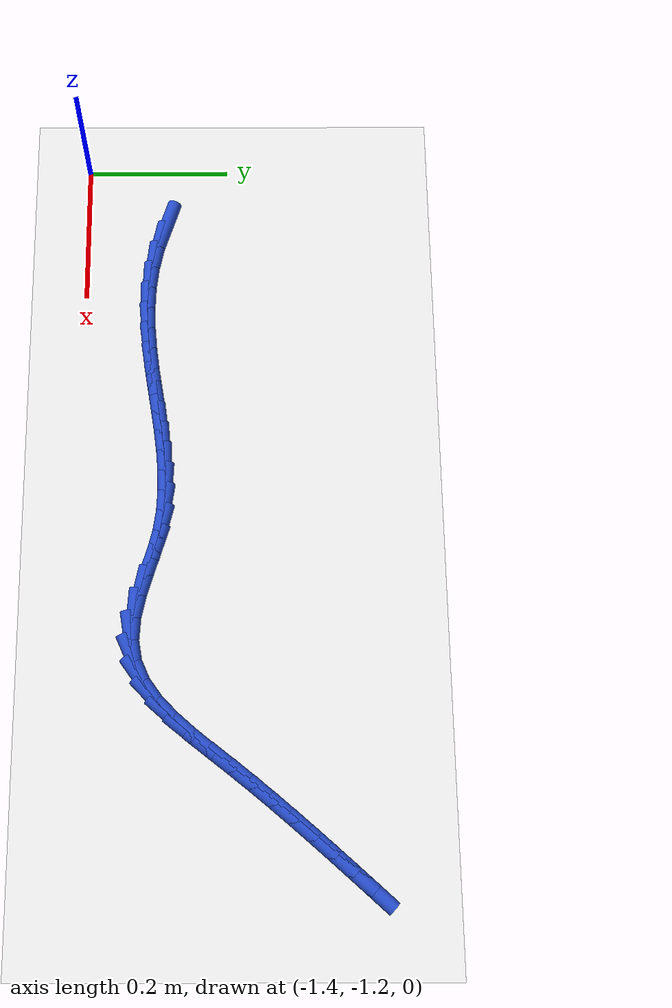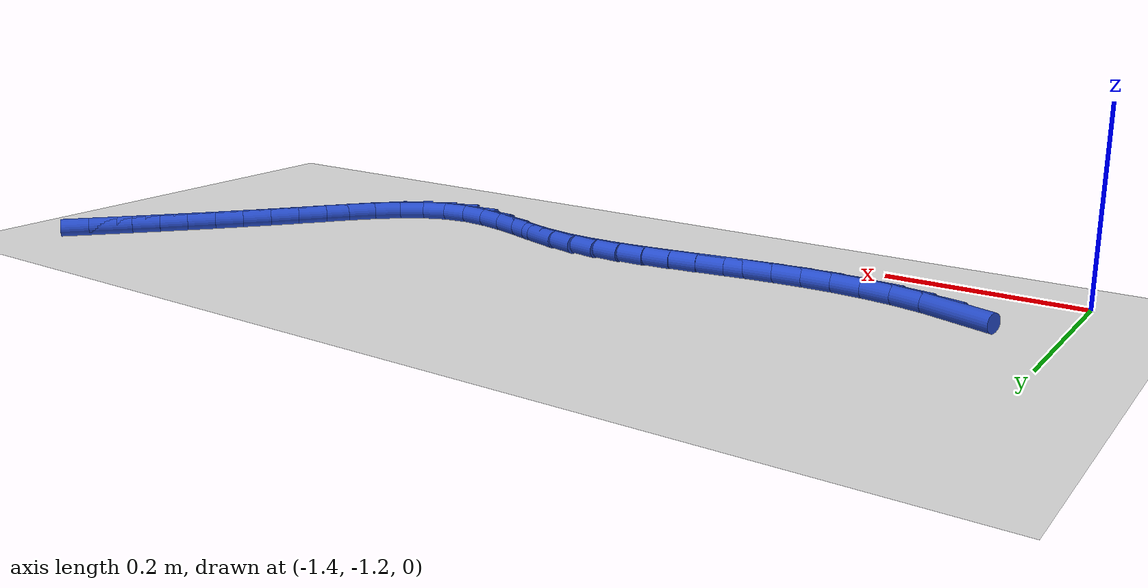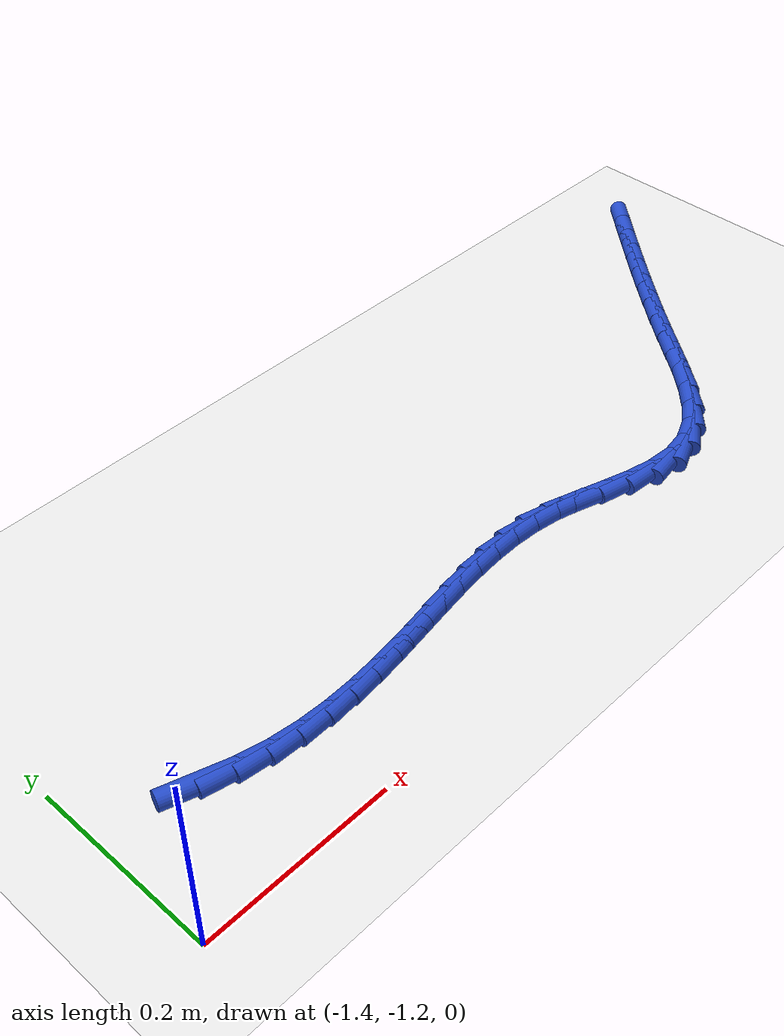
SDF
<sdf version="1.6">
 <world name="default">
  <model name="ground_plane">
   <static>1</static>
   <link name="link">
    <collision name="collision">
     <geometry><plane><normal>0 0 1</normal><size>100 100</size></plane></geometry>
     <surface><friction><ode><mu>100</mu><mu2>50</mu2></ode></friction></surface>
    </collision>
    <visual name="visual">
     <cast_shadows>0</cast_shadows>
     <geometry><plane><normal>0 0 1</normal><size>100 100</size></plane></geometry>
     <material>
      <script><uri>file://media/materials/scripts/gazebo.material</uri><name>Gazebo/WhiteGlow</name></script>
     </material>
    </visual>
   </link>
  </model>
  <model name="line">
   <link name="link_215">
    <pose>-1.3069381416918597 -1.0879665378710797 0.01 0 1.57 -0.3223513973124456</pose>
    <collision name="collision">
     <geometry><cylinder><radius>0.01</radius><length>0.08</length></cylinder></geometry>
    </collision>
    <visual name="visual">
     <material>
      <script><name>Gazebo/Blue</name><uri>file://media/materials/scripts/gazebo.material</uri></script>
     </material>
     <geometry><cylinder><radius>0.01</radius><length>0.08</length></cylinder></geometry>
    </visual>
   </link>
   <link name="link_216">
    <pose>-1.2741670813501549 -1.098912107102975 0.01 0 1.57 -0.22048272928162013</pose>
    <collision name="collision">
     <geometry><cylinder><radius>0.01</radius><length>0.08</length></cylinder></geometry>
    </collision>
    <visual name="visual">
     <material>
      <script><name>Gazebo/Blue</name><uri>file://media/materials/scripts/gazebo.material</uri></script>
     </material>
     <geometry><cylinder><radius>0.01</radius><length>0.08</length></cylinder></geometry>
    </visual>
   </link>
   <link name="link_217">
    <pose>-1.241827384131492 -1.1061602852309242 0.01 0 1.57 -0.12613227870529534</pose>
    <collision name="collision">
     <geometry><cylinder><radius>0.01</radius><length>0.08</length></cylinder></geometry>
    </collision>
    <visual name="visual">
     <material>
      <script><name>Gazebo/Blue</name><uri>file://media/materials/scripts/gazebo.material</uri></script>
     </material>
     <geometry><cylinder><radius>0.01</radius><length>0.08</length></cylinder></geometry>
    </visual>
   </link>
   <link name="link_218">
    <pose>-1.209896580229742 -1.1102092854192736 0.01 0 1.57 -0.04270858013161919</pose>
    <collision name="collision">
     <geometry><cylinder><radius>0.01</radius><length>0.08</length></cylinder></geometry>
    </collision>
    <visual name="visual">
     <material>
      <script><name>Gazebo/Blue</name><uri>file://media/materials/scripts/gazebo.material</uri></script>
     </material>
     <geometry><cylinder><radius>0.01</radius><length>0.08</length></cylinder></geometry>
    </visual>
   </link>
   <link name="link_219">
    <pose>-1.1783521998387714 -1.1115573208323712 0.01 0 1.57 0.027405083988351304</pose>
    <collision name="collision">
     <geometry><cylinder><radius>0.01</radius><length>0.08</length></cylinder></geometry>
    </collision>
    <visual name="visual">
     <material>
      <script><name>Gazebo/Blue</name><uri>file://media/materials/scripts/gazebo.material</uri></script>
     </material>
     <geometry><cylinder><radius>0.01</radius><length>0.08</length></cylinder></geometry>
    </visual>
   </link>
   <link name="link_220">
    <pose>-1.1471717731524511 -1.1107026046345654 0.01 0 1.57 0.08279802756167352</pose>
    <collision name="collision">
     <geometry><cylinder><radius>0.01</radius><length>0.08</length></cylinder></geometry>
    </collision>
    <visual name="visual">
     <material>
      <script><name>Gazebo/Blue</name><uri>file://media/materials/scripts/gazebo.material</uri></script>
     </material>
     <geometry><cylinder><radius>0.01</radius><length>0.08</length></cylinder></geometry>
    </visual>
   </link>
   <link name="link_221">
    <pose>-1.1163328303646485 -1.1081433499902036 0.01 0 1.57 0.12276060538566147</pose>
    <collision name="collision">
     <geometry><cylinder><radius>0.01</radius><length>0.08</length></cylinder></geometry>
    </collision>
    <visual name="visual">
     <material>
      <script><name>Gazebo/Blue</name><uri>file://media/materials/scripts/gazebo.material</uri></script>
     </material>
     <geometry><cylinder><radius>0.01</radius><length>0.08</length></cylinder></geometry>
    </visual>
   </link>
   <link name="link_222">
    <pose>-1.0858129016692322 -1.1043777700636326 0.01 0 1.57 0.1469538210554812</pose>
    <collision name="collision">
     <geometry><cylinder><radius>0.01</radius><length>0.08</length></cylinder></geometry>
    </collision>
    <visual name="visual">
     <material>
      <script><name>Gazebo/Blue</name><uri>file://media/materials/scripts/gazebo.material</uri></script>
     </material>
     <geometry><cylinder><radius>0.01</radius><length>0.08</length></cylinder></geometry>
    </visual>
   </link>
   <link name="link_223">
    <pose>-1.0555895172600713 -1.0999040780192009 0.01 0 1.57 0.1551274842624307</pose>
    <collision name="collision">
     <geometry><cylinder><radius>0.01</radius><length>0.08</length></cylinder></geometry>
    </collision>
    <visual name="visual">
     <material>
      <script><name>Gazebo/Blue</name><uri>file://media/materials/scripts/gazebo.material</uri></script>
     </material>
     <geometry><cylinder><radius>0.01</radius><length>0.08</length></cylinder></geometry>
    </visual>
   </link>
   <link name="link_224">
    <pose>-1.0256402073310347 -1.095220487021256 0.01 0 1.57 0.14693392653594667</pose>
    <collision name="collision">
     <geometry><cylinder><radius>0.01</radius><length>0.08</length></cylinder></geometry>
    </collision>
    <visual name="visual">
     <material>
      <script><name>Gazebo/Blue</name><uri>file://media/materials/scripts/gazebo.material</uri></script>
     </material>
     <geometry><cylinder><radius>0.01</radius><length>0.08</length></cylinder></geometry>
    </visual>
   </link>
   <link name="link_225">
    <pose>-0.9959425020759908 -1.0908252102341458 0.01 0 1.57 0.12185424018210064</pose>
    <collision name="collision">
     <geometry><cylinder><radius>0.01</radius><length>0.08</length></cylinder></geometry>
    </collision>
    <visual name="visual">
     <material>
      <script><name>Gazebo/Blue</name><uri>file://media/materials/scripts/gazebo.material</uri></script>
     </material>
     <geometry><cylinder><radius>0.01</radius><length>0.08</length></cylinder></geometry>
    </visual>
   </link>
   <link name="link_226">
    <pose>-0.966473931688808 -1.0872164608222175 0.01 0 1.57 0.07925461041127242</pose>
    <collision name="collision">
     <geometry><cylinder><radius>0.01</radius><length>0.08</length></cylinder></geometry>
    </collision>
    <visual name="visual">
     <material>
      <script><name>Gazebo/Blue</name><uri>file://media/materials/scripts/gazebo.material</uri></script>
     </material>
     <geometry><cylinder><radius>0.01</radius><length>0.08</length></cylinder></geometry>
    </visual>
   </link>
   <link name="link_227">
    <pose>-0.9372120263633563 -1.0848924519498189 0.01 0 1.57 0.018605066812365154</pose>
    <collision name="collision">
     <geometry><cylinder><radius>0.01</radius><length>0.08</length></cylinder></geometry>
    </collision>
    <visual name="visual">
     <material>
      <script><name>Gazebo/Blue</name><uri>file://media/materials/scripts/gazebo.material</uri></script>
     </material>
     <geometry><cylinder><radius>0.01</radius><length>0.08</length></cylinder></geometry>
    </visual>
   </link>
   <link name="link_228">
    <pose>-0.9081343162935036 -1.0843513967812977 0.01 0 1.57 -0.06010570691124996</pose>
    <collision name="collision">
     <geometry><cylinder><radius>0.01</radius><length>0.08</length></cylinder></geometry>
    </collision>
    <visual name="visual">
     <material>
      <script><name>Gazebo/Blue</name><uri>file://media/materials/scripts/gazebo.material</uri></script>
     </material>
     <geometry><cylinder><radius>0.01</radius><length>0.08</length></cylinder></geometry>
    </visual>
   </link>
   <link name="link_229">
    <pose>-0.879218331673119 -1.0860915084810019 0.01 0 1.57 -0.15578119071336138</pose>
    <collision name="collision">
     <geometry><cylinder><radius>0.01</radius><length>0.08</length></cylinder></geometry>
    </collision>
    <visual name="visual">
     <material>
      <script><name>Gazebo/Blue</name><uri>file://media/materials/scripts/gazebo.material</uri></script>
     </material>
     <geometry><cylinder><radius>0.01</radius><length>0.08</length></cylinder></geometry>
    </visual>
   </link>
   <link name="link_230">
    <pose>-0.8504416026960707 -1.0906110002132783 0.01 0 1.57 -0.2584110733649718</pose>
    <collision name="collision">
     <geometry><cylinder><radius>0.01</radius><length>0.08</length></cylinder></geometry>
    </collision>
    <visual name="visual">
     <material>
      <script><name>Gazebo/Blue</name><uri>file://media/materials/scripts/gazebo.material</uri></script>
     </material>
     <geometry><cylinder><radius>0.01</radius><length>0.08</length></cylinder></geometry>
    </visual>
   </link>
   <link name="link_231">
    <pose>-0.8217415241635985 -1.0981970304625042 0.01 0 1.57 -0.31252661158570744</pose>
    <collision name="collision">
     <geometry><cylinder><radius>0.01</radius><length>0.08</length></cylinder></geometry>
    </collision>
    <visual name="visual">
     <material>
      <script><name>Gazebo/Blue</name><uri>file://media/materials/scripts/gazebo.material</uri></script>
     </material>
     <geometry><cylinder><radius>0.01</radius><length>0.08</length></cylinder></geometry>
    </visual>
   </link>
   <link name="link_232">
    <pose>-0.7927561508190578 -1.1075626577484117 0.01 0 1.57 -0.2981246274314678</pose>
    <collision name="collision">
     <geometry><cylinder><radius>0.01</radius><length>0.08</length></cylinder></geometry>
    </collision>
    <visual name="visual">
     <material>
      <script><name>Gazebo/Blue</name><uri>file://media/materials/scripts/gazebo.material</uri></script>
     </material>
     <geometry><cylinder><radius>0.01</radius><length>0.08</length></cylinder></geometry>
    </visual>
   </link>
   <link name="link_233">
    <pose>-0.7629883027337316 -1.116709799910015 0.01 0 1.57 -0.22016495395872732</pose>
    <collision name="collision">
     <geometry><cylinder><radius>0.01</radius><length>0.08</length></cylinder></geometry>
    </collision>
    <visual name="visual">
     <material>
      <script><name>Gazebo/Blue</name><uri>file://media/materials/scripts/gazebo.material</uri></script>
     </material>
     <geometry><cylinder><radius>0.01</radius><length>0.08</length></cylinder></geometry>
    </visual>
   </link>
   <link name="link_234">
    <pose>-0.7322833748381457 -1.1235813364929994 0.01 0 1.57 -0.07584265626993453</pose>
    <collision name="collision">
     <geometry><cylinder><radius>0.01</radius><length>0.08</length></cylinder></geometry>
    </collision>
    <visual name="visual">
     <material>
      <script><name>Gazebo/Blue</name><uri>file://media/materials/scripts/gazebo.material</uri></script>
     </material>
     <geometry><cylinder><radius>0.01</radius><length>0.08</length></cylinder></geometry>
    </visual>
   </link>
   <link name="link_235">
    <pose>-0.7019146404993782 -1.1258890083300832 0.01 0 1.57 0.15594782706257898</pose>
    <collision name="collision">
     <geometry><cylinder><radius>0.01</radius><length>0.08</length></cylinder></geometry>
    </collision>
    <visual name="visual">
     <material>
      <script><name>Gazebo/Blue</name><uri>file://media/materials/scripts/gazebo.material</uri></script>
     </material>
     <geometry><cylinder><radius>0.01</radius><length>0.08</length></cylinder></geometry>
    </visual>
   </link>
   <link name="link_236">
    <pose>-0.6734533158138316 -1.1214141922074334 0.01 0 1.57 0.4149894700828293</pose>
    <collision name="collision">
     <geometry><cylinder><radius>0.01</radius><length>0.08</length></cylinder></geometry>
    </collision>
    <visual name="visual">
     <material>
      <script><name>Gazebo/Blue</name><uri>file://media/materials/scripts/gazebo.material</uri></script>
     </material>
     <geometry><cylinder><radius>0.01</radius><length>0.08</length></cylinder></geometry>
    </visual>
   </link>
   <link name="link_237">
    <pose>-0.6473535182493972 -1.1099152439232138 0.01 0 1.57 0.6194556767825515</pose>
    <collision name="collision">
     <geometry><cylinder><radius>0.01</radius><length>0.08</length></cylinder></geometry>
    </collision>
    <visual name="visual">
     <material>
      <script><name>Gazebo/Blue</name><uri>file://media/materials/scripts/gazebo.material</uri></script>
     </material>
     <geometry><cylinder><radius>0.01</radius><length>0.08</length></cylinder></geometry>
    </visual>
   </link>
   <link name="link_238">
    <pose>-0.6231989538231241 -1.0926909240428457 0.01 0 1.57 0.7619403407685577</pose>
    <collision name="collision">
     <geometry><cylinder><radius>0.01</radius><length>0.08</length></cylinder></geometry>
    </collision>
    <visual name="visual">
     <material>
      <script><name>Gazebo/Blue</name><uri>file://media/materials/scripts/gazebo.material</uri></script>
     </material>
     <geometry><cylinder><radius>0.01</radius><length>0.08</length></cylinder></geometry>
    </visual>
   </link>
   <link name="link_239">
    <pose>-0.6005503255666471 -1.0710807025093185 0.01 0 1.57 0.8517959708458265</pose>
    <collision name="collision">
     <geometry><cylinder><radius>0.01</radius><length>0.08</length></cylinder></geometry>
    </collision>
    <visual name="visual">
     <material>
      <script><name>Gazebo/Blue</name><uri>file://media/materials/scripts/gazebo.material</uri></script>
     </material>
     <geometry><cylinder><radius>0.01</radius><length>0.08</length></cylinder></geometry>
    </visual>
   </link>
   <link name="link_240">
    <pose>-0.578968336511602 -1.0464240492656218 0.01 0 1.57 0.8992145118736548</pose>
    <collision name="collision">
     <geometry><cylinder><radius>0.01</radius><length>0.08</length></cylinder></geometry>
    </collision>
    <visual name="visual">
     <material>
      <script><name>Gazebo/Blue</name><uri>file://media/materials/scripts/gazebo.material</uri></script>
     </material>
     <geometry><cylinder><radius>0.01</radius><length>0.08</length></cylinder></geometry>
    </visual>
   </link>
   <link name="link_241">
    <pose>-0.558013689689624 -1.020060434254745 0.01 0 1.57 0.9103775781241387</pose>
    <collision name="collision">
     <geometry><cylinder><radius>0.01</radius><length>0.08</length></cylinder></geometry>
    </collision>
    <visual name="visual">
     <material>
      <script><name>Gazebo/Blue</name><uri>file://media/materials/scripts/gazebo.material</uri></script>
     </material>
     <geometry><cylinder><radius>0.01</radius><length>0.08</length></cylinder></geometry>
    </visual>
   </link>
   <link name="link_242">
    <pose>-0.5372478600524218 -0.9933270815988063 0.01 0 1.57 0.8975116617635371</pose>
    <collision name="collision">
     <geometry><cylinder><radius>0.01</radius><length>0.08</length></cylinder></geometry>
    </collision>
    <visual name="visual">
     <material>
      <script><name>Gazebo/Blue</name><uri>file://media/materials/scripts/gazebo.material</uri></script>
     </material>
     <geometry><cylinder><radius>0.01</radius><length>0.08</length></cylinder></geometry>
    </visual>
   </link>
   <link name="link_243">
    <pose>-0.5163721505399365 -0.9671544004851899 0.01 0 1.57 0.8833655853538642</pose>
    <collision name="collision">
     <geometry><cylinder><radius>0.01</radius><length>0.08</length></cylinder></geometry>
    </collision>
    <visual name="visual">
     <material>
      <script><name>Gazebo/Blue</name><uri>file://media/materials/scripts/gazebo.material</uri></script>
     </material>
     <geometry><cylinder><radius>0.01</radius><length>0.08</length></cylinder></geometry>
    </visual>
   </link>
   <link name="link_244">
    <pose>-0.4953888815365821 -0.9415970212706298 0.01 0 1.57 0.8710013312805046</pose>
    <collision name="collision">
     <geometry><cylinder><radius>0.01</radius><length>0.08</length></cylinder></geometry>
    </collision>
    <visual name="visual">
     <material>
      <script><name>Gazebo/Blue</name><uri>file://media/materials/scripts/gazebo.material</uri></script>
     </material>
     <geometry><cylinder><radius>0.01</radius><length>0.08</length></cylinder></geometry>
    </visual>
   </link>
   <link name="link_245">
    <pose>-0.47433945726185534 -0.9165958639737484 0.01 0 1.57 0.8605083792738067</pose>
    <collision name="collision">
     <geometry><cylinder><radius>0.01</radius><length>0.08</length></cylinder></geometry>
    </collision>
    <visual name="visual">
     <material>
      <script><name>Gazebo/Blue</name><uri>file://media/materials/scripts/gazebo.material</uri></script>
     </material>
     <geometry><cylinder><radius>0.01</radius><length>0.08</length></cylinder></geometry>
    </visual>
   </link>
   <link name="link_246">
    <pose>-0.45326528193525445 -0.892091848613169 0.01 0 1.57 0.8519707297458977</pose>
    <collision name="collision">
     <geometry><cylinder><radius>0.01</radius><length>0.08</length></cylinder></geometry>
    </collision>
    <visual name="visual">
     <material>
      <script><name>Gazebo/Blue</name><uri>file://media/materials/scripts/gazebo.material</uri></script>
     </material>
     <geometry><cylinder><radius>0.01</radius><length>0.08</length></cylinder></geometry>
    </visual>
   </link>
   <link name="link_247">
    <pose>-0.4322077597762767 -0.868025895207515 0.01 0 1.57 0.8454672508263815</pose>
    <collision name="collision">
     <geometry><cylinder><radius>0.01</radius><length>0.08</length></cylinder></geometry>
    </collision>
    <visual name="visual">
     <material>
      <script><name>Gazebo/Blue</name><uri>file://media/materials/scripts/gazebo.material</uri></script>
     </material>
     <geometry><cylinder><radius>0.01</radius><length>0.08</length></cylinder></geometry>
    </visual>
   </link>
   <link name="link_248">
    <pose>-0.41120829500441963 -0.8443389237754092 0.01 0 1.57 0.8410719780770941</pose>
    <collision name="collision">
     <geometry><cylinder><radius>0.01</radius><length>0.08</length></cylinder></geometry>
    </collision>
    <visual name="visual">
     <material>
      <script><name>Gazebo/Blue</name><uri>file://media/materials/scripts/gazebo.material</uri></script>
     </material>
     <geometry><cylinder><radius>0.01</radius><length>0.08</length></cylinder></geometry>
    </visual>
   </link>
   <link name="link_249">
    <pose>-0.39030829183918114 -0.820971854335475 0.01 0 1.57 0.8388542998985429</pose>
    <collision name="collision">
     <geometry><cylinder><radius>0.01</radius><length>0.08</length></cylinder></geometry>
    </collision>
    <visual name="visual">
     <material>
      <script><name>Gazebo/Blue</name><uri>file://media/materials/scripts/gazebo.material</uri></script>
     </material>
     <geometry><cylinder><radius>0.01</radius><length>0.08</length></cylinder></geometry>
    </visual>
   </link>
  </model>
 </world>
</sdf>
